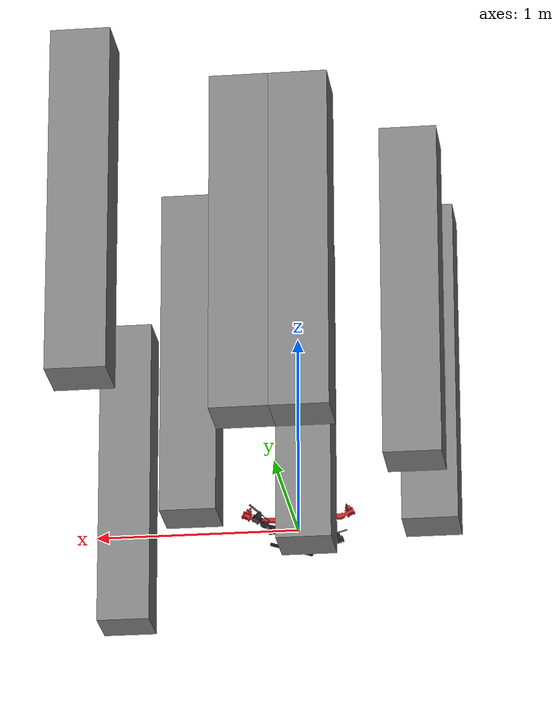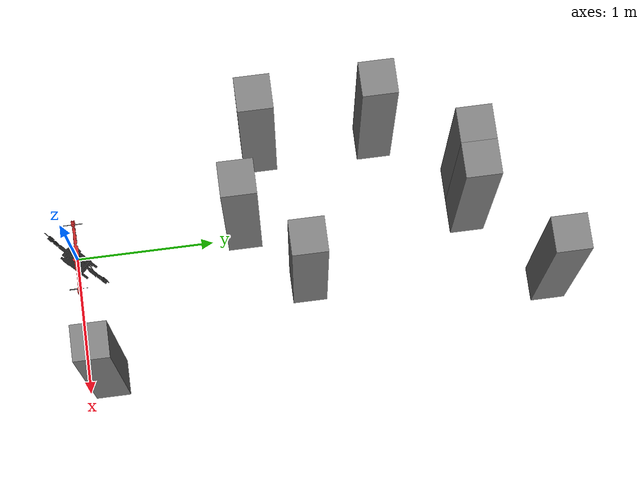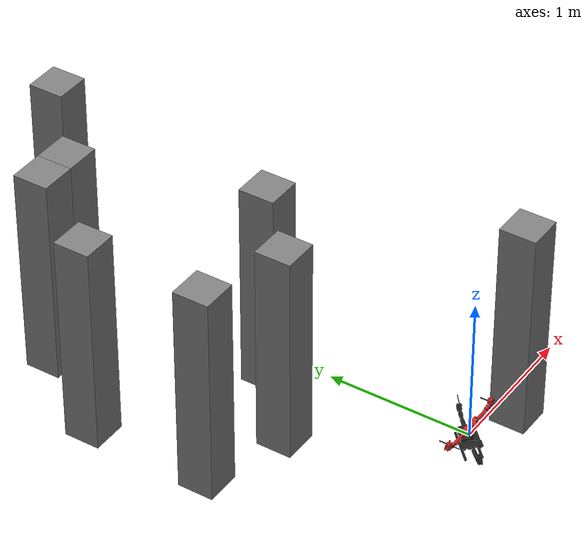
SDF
<?xml version="1.0" encoding="UTF-8"?>
<sdf version='1.9'>

  <!-- in version 2, only changed moment of inertias and masses, propellers xy locations. rest things have been kept same as version 1-->

  <model name='folding_drone'>
    <include merge='true'>
      <uri>model://folding_drone_base_v2</uri>
    </include>
    <include merge='false'>
      <uri>model://cluttered_obstacles_simulations</uri>
    </include>
    <plugin filename="gz-sim-joint-position-controller-system" name="gz::sim::systems::JointPositionController">
      <joint_name>upper_arm_joint</joint_name>
      <sub_topic>servo_0</sub_topic>
      <p_gain>10</p_gain>
      <i_gain>0</i_gain>
      <d_gain>0</d_gain>
    </plugin>
    <plugin filename="gz-sim-multicopter-motor-model-system" name="gz::sim::systems::MulticopterMotorModel">
      <jointName>rotor_0_joint</jointName>
      <linkName>rotor_0</linkName>
      <turningDirection>cw</turningDirection>
      <timeConstantUp>0.0125</timeConstantUp>
      <timeConstantDown>0.025</timeConstantDown>
      <maxRotVelocity>2000.0</maxRotVelocity>
      <motorConstant>13.54858e-06</motorConstant>
      <momentConstant>0.0375</momentConstant>
      <commandSubTopic>command/motor_speed</commandSubTopic>
      <motorNumber>0</motorNumber>
      <rotorDragCoefficient>8.06428e-05</rotorDragCoefficient>
      <rollingMomentCoefficient>1e-06</rollingMomentCoefficient>
      <rotorVelocitySlowdownSim>10</rotorVelocitySlowdownSim>
      <motorType>velocity</motorType>
    </plugin>
    <plugin filename="gz-sim-multicopter-motor-model-system" name="gz::sim::systems::MulticopterMotorModel">
      <jointName>rotor_1_joint</jointName>
      <linkName>rotor_1</linkName>
      <turningDirection>cw</turningDirection>
      <timeConstantUp>0.0125</timeConstantUp>
      <timeConstantDown>0.025</timeConstantDown>
      <maxRotVelocity>2000.0</maxRotVelocity>
      <motorConstant>13.54858e-06</motorConstant>
      <momentConstant>0.0375</momentConstant>
      <commandSubTopic>command/motor_speed</commandSubTopic>
      <motorNumber>1</motorNumber>
      <rotorDragCoefficient>8.06428e-05</rotorDragCoefficient>
      <rollingMomentCoefficient>1e-06</rollingMomentCoefficient>
      <rotorVelocitySlowdownSim>10</rotorVelocitySlowdownSim>
      <motorType>velocity</motorType>
    </plugin>
    <plugin filename="gz-sim-multicopter-motor-model-system" name="gz::sim::systems::MulticopterMotorModel">
      <jointName>rotor_2_joint</jointName>
      <linkName>rotor_2</linkName>
      <turningDirection>ccw</turningDirection>
      <timeConstantUp>0.0125</timeConstantUp>
      <timeConstantDown>0.025</timeConstantDown>
      <maxRotVelocity>2000.0</maxRotVelocity>
      <motorConstant>13.54858e-06</motorConstant>
      <momentConstant>0.0375</momentConstant>
      <commandSubTopic>command/motor_speed</commandSubTopic>
      <motorNumber>2</motorNumber>
      <rotorDragCoefficient>8.06428e-05</rotorDragCoefficient>
      <rollingMomentCoefficient>1e-06</rollingMomentCoefficient>
      <rotorVelocitySlowdownSim>10</rotorVelocitySlowdownSim>
      <motorType>velocity</motorType>
    </plugin>
    <plugin filename="gz-sim-multicopter-motor-model-system" name="gz::sim::systems::MulticopterMotorModel">
      <jointName>rotor_3_joint</jointName>
      <linkName>rotor_3</linkName>
      <turningDirection>ccw</turningDirection>
      <timeConstantUp>0.0125</timeConstantUp>
      <timeConstantDown>0.025</timeConstantDown>
      <maxRotVelocity>2000.0</maxRotVelocity>
      <motorConstant>13.54858e-06</motorConstant>
      <momentConstant>0.0375</momentConstant>
      <commandSubTopic>command/motor_speed</commandSubTopic>
      <motorNumber>3</motorNumber>
      <rotorDragCoefficient>8.06428e-05</rotorDragCoefficient>
      <rollingMomentCoefficient>1e-06</rollingMomentCoefficient>
      <rotorVelocitySlowdownSim>10</rotorVelocitySlowdownSim>
      <motorType>velocity</motorType>
    </plugin>
    <plugin filename="gz-sim-odometry-publisher-system" name="gz::sim::systems::OdometryPublisher">
      <dimensions>3</dimensions>
    </plugin>
    <plugin filename="gz-sim-pose-publisher-system" name="gz::sim::systems::PosePublisher">
      <publish_model_pose>true</publish_model_pose>
      <publish_link_pose>false</publish_link_pose>
      <publish_collision_pose>false</publish_collision_pose>
      <publish_visual_pose>false</publish_visual_pose>
      <publish_nested_model_pose>false</publish_nested_model_pose>
    </plugin>
  </model>
</sdf>

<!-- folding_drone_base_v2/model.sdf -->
<sdf version='1.9'>

  <!-- in version 2, only changed moment of inertias and masses and propellers xy locations, rest things have been kept same as version 1-->

  <model name='folding_drone_base_v2'>
    <pose>0 0 0 0 0 0</pose>
    <self_collide>false</self_collide>
    <static>false</static>
    <link name="base_link">
      <inertial>
        <mass>1.19253</mass>
        <pose>0.00 0.0 -0.02258 0 0 0</pose>
        <inertia>
          <ixx>0.0068</ixx>
          <ixy>-0.0041</ixy>
          <ixz>0</ixz>
          <iyy>0.0068</iyy>
          <iyz>0</iyz>
          <izz>0.0099</izz>
        </inertia>
      </inertial>
      <gravity>true</gravity>
      <velocity_decay/>
      <visual name="base_link_visual">
        <pose>0.0 0.0 0 0.0 0 1.57</pose>
        <transparency>0.1</transparency>
        <geometry>
          <mesh>
            <scale>1 1 1</scale>
            <uri>model://folding_drone_base_v2/meshes/main_assembly_2.0_bottom_half_m_donottranslate.STL</uri>
          </mesh>
        </geometry>
        <material>
          <script>
            <name>Gazebo/Black</name>
            <uri>file://media/materials/scripts/gazebo.material</uri>
          </script>
        </material>
      </visual>
      <collision name="base_link_collision_0">
        <pose>0 0 0 0 0 0.78539816339</pose>
        <geometry>
          <box>
            <size>0.5 0.13 0.08</size>
          </box>
        </geometry>
        <surface>
          <contact>
            <ode>
              <min_depth>0.001</min_depth>
              <max_vel>0</max_vel>
            </ode>
          </contact>
          <friction>
            <ode/>
          </friction>
        </surface>
      </collision>
      <collision name="base_link_collision_1">
        <pose>0.03 -0.03 -.058 -0.25 0 0.78</pose>
        <geometry>
          <box>
            <size>0.015 0.015 0.045</size>
          </box>
        </geometry>
        <surface>
          <contact>
            <ode>
              <min_depth>0.001</min_depth>
              <max_vel>0</max_vel>
            </ode>
          </contact>
          <friction>
            <ode/>
          </friction>
        </surface>
      </collision>
      <collision name="base_link_collision_2">
        <pose>-0.03 0.03 -.058 0.25 0 0.78</pose>
        <geometry>
          <box>
            <size>0.015 0.015 0.045</size>
          </box>
        </geometry>
        <surface>
          <contact>
            <ode>
              <min_depth>0.001</min_depth>
              <max_vel>0</max_vel>
            </ode>
          </contact>
          <friction>
            <ode/>
          </friction>
        </surface>
      </collision>
      <collision name="base_link_collision_3">
        <pose>0.04 -0.04 -.0795 0 0 0.78</pose>
        <geometry>
          <box>
            <size>0.25 0.015 0.015</size>
          </box>
        </geometry>
        <surface>
          <contact>
            <ode>
              <min_depth>0.001</min_depth>
              <max_vel>0</max_vel>
            </ode>
          </contact>
          <friction>
            <ode/>
          </friction>
        </surface>
      </collision>
      <collision name="base_link_collision_4">
        <pose>-0.04 0.04 -.0795 0 0 0.78</pose>
        <geometry>
          <box>
            <size>0.25 0.015 0.015</size>
          </box>
        </geometry>
        <surface>
          <contact>
            <ode>
              <min_depth>0.001</min_depth>
              <max_vel>0</max_vel>
            </ode>
          </contact>
          <friction>
            <ode/>
          </friction>
        </surface>
      </collision>

      <sensor name="air_pressure_sensor" type="air_pressure">
        <always_on>1</always_on>
        <update_rate>50</update_rate>
        <air_pressure>
          <pressure>
            <noise type="gaussian">
              <mean>0</mean>
              <stddev>0.01</stddev>
            </noise>
          </pressure>
        </air_pressure>
      </sensor>
      <sensor name="imu_sensor" type="imu">
        <always_on>1</always_on>
        <update_rate>250</update_rate>
        <imu>
          <angular_velocity>
            <x>
              <noise type="gaussian">
                <mean>0</mean>
                <stddev>0.00018665</stddev>
                <dynamic_bias_stddev>3.8785e-05</dynamic_bias_stddev>
                <dynamic_bias_correlation_time>1000</dynamic_bias_correlation_time>
              </noise>
            </x>
            <y>
              <noise type="gaussian">
                <mean>0</mean>
                <stddev>0.00018665</stddev>
                <dynamic_bias_stddev>3.8785e-05</dynamic_bias_stddev>
                <dynamic_bias_correlation_time>1000</dynamic_bias_correlation_time>
              </noise>
            </y>
            <z>
              <noise type="gaussian">
                <mean>0</mean>
                <stddev>0.00018665</stddev>
                <dynamic_bias_stddev>3.8785e-05</dynamic_bias_stddev>
                <dynamic_bias_correlation_time>1000</dynamic_bias_correlation_time>
              </noise>
            </z>
          </angular_velocity>
          <linear_acceleration>
            <x>
              <noise type="gaussian">
                <mean>0</mean>
                <stddev>0.00186</stddev>
                <dynamic_bias_stddev>0.006</dynamic_bias_stddev>
                <dynamic_bias_correlation_time>300</dynamic_bias_correlation_time>
              </noise>
            </x>
            <y>
              <noise type="gaussian">
                <mean>0</mean>
                <stddev>0.00186</stddev>
                <dynamic_bias_stddev>0.006</dynamic_bias_stddev>
                <dynamic_bias_correlation_time>300</dynamic_bias_correlation_time>
              </noise>
            </y>
            <z>
              <noise type="gaussian">
                <mean>0</mean>
                <stddev>0.00186</stddev>
                <dynamic_bias_stddev>0.006</dynamic_bias_stddev>
                <dynamic_bias_correlation_time>300</dynamic_bias_correlation_time>
              </noise>
            </z>
          </linear_acceleration>
        </imu>
      </sensor>
      <sensor name="navsat_sensor" type="navsat">
        <always_on>1</always_on>
        <update_rate>30</update_rate>
      </sensor>
            <sensor name='gpu_lidar' type='gpu_lidar'>"
        <pose relative_to='lidar_frame'>0 0 0 0 0 0</pose>
        <topic>model/folding_drone/lidar</topic>
        <update_rate>10</update_rate>
        <ray>
            <scan>
                <horizontal>
                    <samples>502</samples>
                    <resolution>1</resolution>
                    <min_angle>0</min_angle>
                    <max_angle>6.2831854820251465</max_angle>
                </horizontal>
                <vertical>
                    <samples>1</samples>
                    <resolution>1</resolution>
                    <min_angle>0.0</min_angle>
                    <max_angle>0.0</max_angle>
                </vertical>
            </scan>
            <range>
                <min>0.02</min>
                <max>12.0</max>
                <resolution>0.01</resolution>
            </range>
        </ray>
        <always_on>1</always_on>
        <visualize>true</visualize>
    </sensor>

    </link>

    <frame name="lidar_frame" attached_to='base_link'>  <!-- added for lidar -->
      <pose>0.0 0 0.13 0 0 1.57</pose>
    </frame>

    <link name="upper_arm">
      <gravity>true</gravity>
      <self_collide>false</self_collide>
      <velocity_decay/>
      <pose>-0.00 0.0 0 0 0 0.78539816339</pose>
      <inertial>
        <mass>0.38548</mass>
        <pose>0 0 0.058 0 0 0</pose>
        <inertia>
          <ixx>0.0037</ixx>
          <ixy>0.0035</ixy>
          <ixz>0</ixz>
          <iyy>0.0037</iyy>
          <iyz>0</iyz>
          <izz>0.0072</izz>
        </inertia>
      </inertial>
      <gravity>true</gravity>
      <velocity_decay/>
      <visual name="upper_arm_visual">
        <transparency>0.1</transparency>
        <pose>0.0 0.0 0 0 0 1.57</pose>
        <geometry>
          <mesh>
            <scale>1 1 1</scale>
            <uri>model://folding_drone_base_v2/meshes/main_assembly_2.0_top_half_m_donottranslate.STL</uri>
          </mesh>
        </geometry>
        <material>
          <script>
            <name>Gazebo/Red</name>
            <uri>file://media/materials/scripts/gazebo.material</uri>
          </script>
        </material>
      </visual>
      <collision name="upper_arm_collision">
        <pose>0 0 0.09 0 0 -0.78539816339</pose>
        <geometry>
          <box>
            <size>0.5 0.06 0.08</size>
          </box>
        </geometry>
        <surface>
          <contact>
            <ode>
              <min_depth>0.001</min_depth>
              <max_vel>0</max_vel>
            </ode>
          </contact>
          <friction>
            <ode/>
          </friction>
        </surface>
      </collision>

    </link>
    <joint name="upper_arm_joint" type="revolute">
      <parent>base_link</parent>
      <child>upper_arm</child>
      <pose>0 0 0 0 0 0</pose>
      <axis>
        <xyz>0 0 1</xyz>
        <limit>
          <!-- 0/+90 deg. -->
          <lower>-0.78539816339</lower>
          <upper>0.78539816339</upper>
          <effort>1.8639</effort>
        </limit>

        <dynamics>
          <damping>1.000</damping>
        </dynamics>
      </axis>
      <physics>
        <ode>
          <implicit_spring_damper>1</implicit_spring_damper>
        </ode>
      </physics>
    </joint>
    <link name="rotor_0">
      <gravity>true</gravity>
      <self_collide>false</self_collide>
      <velocity_decay/>
      <pose>0.24131 0.0 0.095 0 -0.4369 0</pose>
      <inertial>
          <mass>0.00386</mass>
          <inertia>
            <ixx>0.4284e-05</ixx>
            <iyy>0.0044e-05</iyy>
            <izz>0.4300e-05</izz>
          </inertia>
      </inertial>
      <visual name="rotor_0_visual">
        <pose>-0.007 0.06994 -0.00375 1.57079632679 0 0</pose>
        <geometry>
          <mesh>
            <scale>0.001 0.001 0.001</scale>
            <uri>model://folding_drone_base/meshes/5045_propeller_CW.STL</uri>
          </mesh>
        </geometry>
        <material>
          <script>
            <name>Gazebo/DarkGrey</name>
            <uri>file://media/materials/scripts/gazebo.material</uri>
          </script>
        </material>
      </visual>
      <collision name="rotor_0_collision">
        <pose>0 0 0 0 0 1.57079632679 </pose>
        <geometry>
          <box>
            <size>0.1592307692307692 0.016923076923076923 0.0008461538461538462</size>
          </box>
        </geometry>
        <surface>
          <contact>
            <ode>
              <min_depth>0.001</min_depth>
              <max_vel>0</max_vel>
            </ode>
          </contact>
          <friction>
            <ode/>
          </friction>
        </surface>
      </collision>
    </link>
    <joint name="rotor_0_joint" type="revolute">
      <parent>upper_arm</parent>
      <child>rotor_0</child>
      <axis>
        <xyz>0 0 1</xyz>
        <limit>
          <lower>-1e+16</lower>
          <upper>1e+16</upper>
        </limit>
        <dynamics>
          <spring_reference>0</spring_reference>
          <spring_stiffness>0</spring_stiffness>
        </dynamics>
      </axis>
    </joint>
    <link name="rotor_1">
      <gravity>true</gravity>
      <self_collide>false</self_collide>
      <velocity_decay/>
      <pose>-0.24131 0.0 0.095 0 0.4369 0</pose>
      <inertial>
          <mass>0.00386</mass>
          <inertia>
            <ixx>0.4284e-05</ixx>
            <iyy>0.0044e-05</iyy>
            <izz>0.4300e-05</izz>
          </inertia>
        </inertial>
      <visual name="rotor_1_visual">
        <pose>-0.007 0.06994 -0.00375 1.57079632679 0 0</pose>
        <geometry>
          <mesh>
            <scale>0.001 0.001 0.001</scale>
            <uri>model://folding_drone_base/meshes/5045_propeller_CW.STL</uri>
          </mesh>
        </geometry>
        <material>
          <script>
            <name>Gazebo/DarkGrey</name>
            <uri>file://media/materials/scripts/gazebo.material</uri>
          </script>
        </material>
      </visual>
      <collision name="rotor_1_collision">
        <pose>0 0 0 0 0 1.57079632679 </pose>
        <geometry>
          <box>
            <size>0.1592307692307692 0.016923076923076923 0.0008461538461538462</size>
          </box>
        </geometry>
        <surface>
          <contact>
            <ode>
              <min_depth>0.001</min_depth>
              <max_vel>0</max_vel>
            </ode>
          </contact>
          <friction>
            <ode/>
          </friction>
        </surface>
      </collision>
    </link>
    <joint name="rotor_1_joint" type="revolute">
      <parent>upper_arm</parent>
      <child>rotor_1</child>
      <axis>
        <xyz>0 0 1</xyz>
        <limit>
          <lower>-1e+16</lower>
          <upper>1e+16</upper>
        </limit>
        <dynamics>
          <spring_reference>0</spring_reference>
          <spring_stiffness>0</spring_stiffness>
        </dynamics>
      </axis>
    </joint>
    <link name="rotor_2">
      <gravity>true</gravity>
      <self_collide>false</self_collide>
      <velocity_decay/>
      <pose>0.17063 0.17063 0.03745 0.4369 0 -0.7854</pose>
      <!-- for checking no tilt-->
      <inertial>
          <mass>0.00386</mass>
          <inertia>
            <ixx>0.4284e-05</ixx>
            <iyy>0.0044e-05</iyy>
            <izz>0.4300e-05</izz>
          </inertia>
        </inertial>
      <visual name="rotor_2_visual">
        <pose>-0.007 0.06994 -0.00375 1.57079632679 0 0</pose>
        <geometry>
          <mesh>
            <scale>0.001 0.001 0.001</scale>
            <uri>model://folding_drone_base/meshes/5045_propeller_CCW.STL</uri>
          </mesh>
        </geometry>
        <material>
          <script>
            <name>Gazebo/DarkGrey</name>
            <uri>file://media/materials/scripts/gazebo.material</uri>
          </script>
        </material>
      </visual>
      <collision name="rotor_2_collision">
        <pose>0 0 0 0 0 1.57079632679 </pose>
        <geometry>
          <box>
            <size>0.1592307692307692 0.016923076923076923 0.0008461538461538462</size>
          </box>
        </geometry>
        <surface>
          <contact>
            <ode>
              <min_depth>0.001</min_depth>
              <max_vel>0</max_vel>
            </ode>
          </contact>
          <friction>
            <ode/>
          </friction>
        </surface>
      </collision>
    </link>
    <joint name="rotor_2_joint" type="revolute">
      <parent>base_link</parent>
      <child>rotor_2</child>
      <axis>
        <xyz>0 0 1</xyz>
        <limit>
          <lower>-1e+16</lower>
          <upper>1e+16</upper>
        </limit>
        <dynamics>
          <spring_reference>0</spring_reference>
          <spring_stiffness>0</spring_stiffness>
        </dynamics>
      </axis>
    </joint>
    <link name="rotor_3">
      <gravity>true</gravity>
      <self_collide>false</self_collide>
      <velocity_decay/>
      <pose>-0.17063 -0.17063 0.03745 -0.4369 0 -0.7854</pose>
      <!-- for checking no tilt-->
      <inertial>
          <mass>0.00386</mass>
          <inertia>
            <ixx>0.4284e-05</ixx>
            <iyy>0.0044e-05</iyy>
            <izz>0.4300e-05</izz>
          </inertia>
        </inertial>
      <visual name="rotor_3_visual">
        <pose>-0.007 0.06994 -0.00375 1.57079632679 0 0</pose>
        <geometry>
          <mesh>
            <scale>0.001 0.001 0.001</scale>
            <uri>model://folding_drone_base/meshes/5045_propeller_CCW.STL</uri>
          </mesh>
        </geometry>
        <material>
          <script>
            <name>Gazebo/DarkGrey</name>
            <uri>file://media/materials/scripts/gazebo.material</uri>
          </script>
        </material>
      </visual>
      <collision name="rotor_3_collision">
        <pose>0 0 0 0 0 1.57079632679 </pose>
        <geometry>
          <box>
            <size>0.1592307692307692 0.016923076923076923 0.0008461538461538462</size>
          </box>
        </geometry>
        <surface>
          <contact>
            <ode>
              <min_depth>0.001</min_depth>
              <max_vel>0</max_vel>
            </ode>
          </contact>
          <friction>
            <ode/>
          </friction>
        </surface>
      </collision>
    </link>
    <joint name="rotor_3_joint" type="revolute">
      <parent>base_link</parent>
      <child>rotor_3</child>
      <axis>
        <xyz>0 0 1</xyz>
        <limit>
          <lower>-1e+16</lower>
          <upper>1e+16</upper>
        </limit>
        <dynamics>
          <spring_reference>0</spring_reference>
          <spring_stiffness>0</spring_stiffness>
        </dynamics>
      </axis>
    </joint>
  </model>
</sdf>

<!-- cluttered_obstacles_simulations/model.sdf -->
<sdf version="1.10">
  <model name="cluttered_obstacles_hardware">

    <static>true</static>

    <link name="obstacle1">
      <pose>-0.1778 1.2333 0.262 0 0 0.0</pose>
      <collision name="obstacle1_collision"><geometry><box><size>0.254 0.254 1.524</size></box></geometry></collision>
      <visual name="obstacle1_visual"><geometry><box><size>0.254 0.254 1.524</size></box></geometry>
      <material><diffuse>0.5 0.5 0.5 1</diffuse></material>
      </visual>
    </link>

    <link name="obstacle2">
      <pose>0.2921 1.6683 0.262 0 0 0.0</pose>
      <collision name="obstacle2_collision"><geometry><box><size>0.254 0.254 1.524</size></box></geometry></collision>
      <visual name="obstacle2_visual"><geometry><box><size>0.254 0.254 1.524</size></box></geometry>
      <material><diffuse>0.5 0.5 0.5 1</diffuse></material>
      </visual>
    </link>

    <link name="obstacle3">
      <pose>-0.1 2.9224 0.262 0 0 0</pose>
      <collision name="obstacle3_collision"><geometry><box><size>0.254 0.254 1.524</size></box></geometry></collision>
      <visual name="obstacle3_visual"><geometry><box><size>0.254 0.254 1.524</size></box></geometry>
      <material><diffuse>0.5 0.5 0.5 1</diffuse></material>
      </visual>
    </link>

    <link name="obstacle4">
      <pose>0.827 0.12 0.262 0 0 0</pose>
      <collision name="obstacle4_collision"><geometry><box><size>0.254 0.254 1.524</size></box></geometry></collision>
      <visual name="obstacle4_visual"><geometry><box><size>0.254 0.254 1.524</size></box></geometry>
      <material><diffuse>0.5 0.5 0.5 1</diffuse></material>
      </visual>
    </link>

    <link name="obstacle5">
      <pose>-0.354 2.9224 0.262 0 0 0</pose>
      <collision name="obstacle5_collision"><geometry><box><size>0.254 0.254 1.524</size></box></geometry></collision>
      <visual name="obstacle5_visual"><geometry><box><size>0.254 0.254 1.524</size></box></geometry>
      <material><diffuse>0.5 0.5 0.5 1</diffuse></material>
      </visual>
    </link>

    <link name="obstacle6">
      <pose>0.5 3.45 0.262 0 0 0</pose>
      <collision name="obstacle6_collision"><geometry><box><size>0.254 0.254 1.524</size></box></geometry></collision>
      <visual name="obstacle6_visual"><geometry><box><size>0.254 0.254 1.524</size></box></geometry>
      <material><diffuse>0.5 0.5 0.5 1</diffuse></material>
      </visual>
    </link>

    <link name="obstacle7">
      <pose>-0.77 1.42 0.262 0 0 0</pose>
      <collision name="obstacle7_collision"><geometry><box><size>0.254 0.254 1.524</size></box></geometry></collision>
      <visual name="obstacle7_visual"><geometry><box><size>0.254 0.254 1.524</size></box></geometry>
      <material><diffuse>0.5 0.5 0.5 1</diffuse></material>
      </visual>
    </link>

    <link name="obstacle8">
      <pose>-0.77 2.2954 0.262 0 0 0</pose>
      <collision name="obstacle8_collision"><geometry><box><size>0.254 0.254 1.524</size></box></geometry></collision>
      <visual name="obstacle8_visual"><geometry><box><size>0.254 0.254 1.524</size></box></geometry>
      <material><diffuse>0.5 0.5 0.5 1</diffuse></material>
      </visual>
    </link>

  </model>
</sdf>
